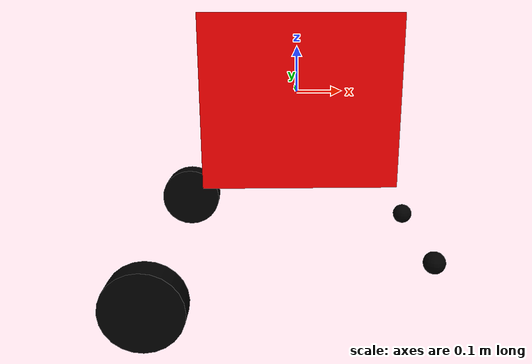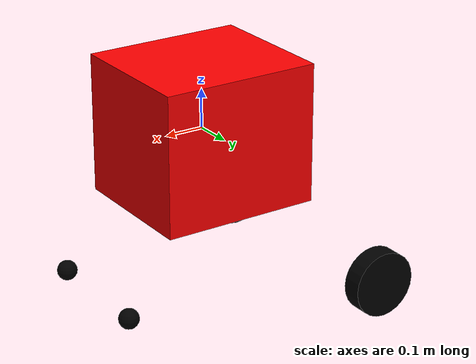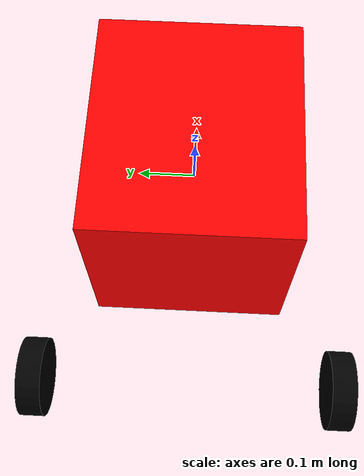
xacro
<?xml version="1.0"?>
<robot name="hoverboard_robot" xmlns:xacro="http://ros.org/wiki/xacro">

    <xacro:include filename="materials.xacro" />
    <xacro:include filename="macros.xacro" />
    <xacro:include filename="wheels.xacro" />
    <xacro:include filename="ros2_control.xacro" />

    <xacro:property name="chassis_weight" value="1.0" />

    <xacro:property name="driving_wheel_diameter" value="0.165" />
    <xacro:property name="driving_wheel_thickness" value="0.05" />
    <xacro:property name="driving_wheel_weight" value="1.0" />

    <xacro:property name="caster_wheel_diameter" value="0.05" />
    <xacro:property name="caster_wheel_weight" value="0.5" />

    <link name="base_footprint"/>

    <link name="base_link">
        <visual>
            <origin xyz="0 0 0" rpy="0 0 0"/>
            <geometry>
                <box size="0.4 0.35 0.35"/>
            </geometry>
            <material name="red"/>
        </visual>
       <collision>
            <origin xyz="0 0 0" rpy="0 0 0" />
            <geometry>
                <box size="0.4 0.35 0.35"/>
            </geometry>
        </collision>
        <xacro:box_inertia m="5.0" w="0.4" h="0.35" d="0.35"/>
    </link>

    <joint name="base_joint" type="fixed">
        <parent link="base_footprint"/>
        <child link="base_link" />
        <origin xyz="0 0 0" rpy="0 0 0"/>
    </joint>

    <xacro:driving_wheel suffix="left" reflect="1"/>
    <xacro:driving_wheel suffix="right" reflect="-1"/>

    <xacro:caster_wheel suffix="front" reflect="1" />
    <xacro:caster_wheel suffix="back" reflect="-1" />

    <xacro:hoverboard_ros2_control name="Hoverboard" />

</robot>

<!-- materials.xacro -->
<robot xmlns:xacro="http://ros.org/wiki/xacro">

    <material name="red">
        <color rgba="1 0 0 1"/>
    </material>

    <material name="blue">
        <color rgba="0 0 1 1"/>
    </material>

    <material name="black">
        <color rgba="0 0 0 1"/>
    </material>

</robot>

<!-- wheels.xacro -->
<robot xmlns:xacro="http://ros.org/wiki/xacro">

    <xacro:macro name="driving_wheel" params="suffix reflect">
        <link name="driving_wheel_${suffix}">
            <visual>
                <origin xyz="-0.15 ${0.16 * reflect} -0.18" rpy="${pi/2} 0 0" />
                <geometry>
                    <cylinder radius="0.0825" length="0.05"/>
                </geometry>
                <material name="black"/>
            </visual>
            <collision>
                <origin xyz="-0.15 ${0.16 * reflect} -0.18" rpy="${pi/2} 0 0" />
                <contact_coefficients mu="100.0" kp="0.0" kd="0.0" />
                <geometry>
                    <cylinder radius="0.0825" length="0.05"/>
                </geometry>
            </collision>
            <xacro:cylinder_inertia m="1.0" r="0.0825" h="0.05" roll="${pi/2}"/>
        </link>

        <joint name="driving_wheel_${suffix}_joint" type="continuous">
            <axis xyz="0 1 0" rpy="0 0 0" />
            <parent link="base_link"/>
            <child link="driving_wheel_${suffix}"/>
            <origin xyz="-0.15 ${0.16 * reflect} -0.18" rpy="0 0 0"/>
        </joint>
    </xacro:macro>

    <xacro:macro name="caster_wheel" params="suffix reflect">
        <link name="caster_wheel_${suffix}">
            <visual>
                <origin xyz="0.15 ${-0.075 * reflect} -0.18" rpy="0 0 0" />
                <geometry>
                    <sphere radius="0.025" />
                </geometry>
                <material name="black"/>
            </visual>
            <collision>
                <origin xyz="0.15 ${-0.075 * reflect} -0.18" rpy="0 0 0" />
                <contact_coefficients mu="0.0" kp="0.0" kd="0.0" />
                <geometry>
                    <sphere radius="0.025" />
                </geometry>
            </collision>
            <xacro:sphere_inertia m="0.5" r="0.025"/>
        </link>

        <joint name="caster_wheel_${suffix}_joint" type="fixed">
            <parent link="base_link"/>
            <child link="caster_wheel_${suffix}"/>
            <origin xyz="0.15 ${-0.075 * reflect} -0.18" rpy="0 0 0"/>
        </joint>
    </xacro:macro>

</robot>
